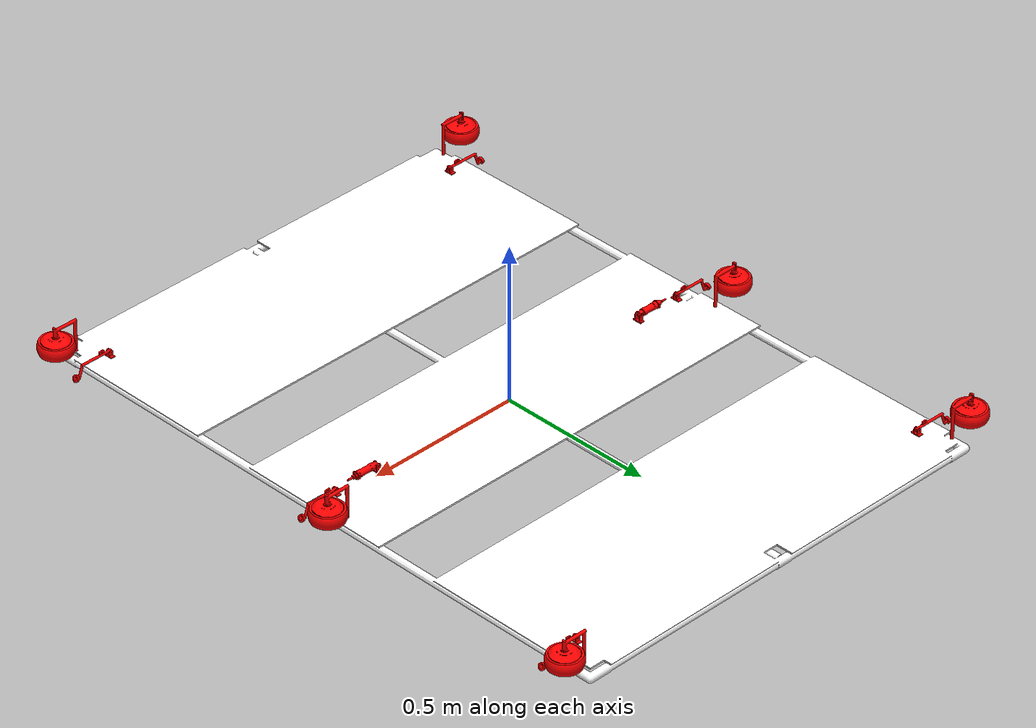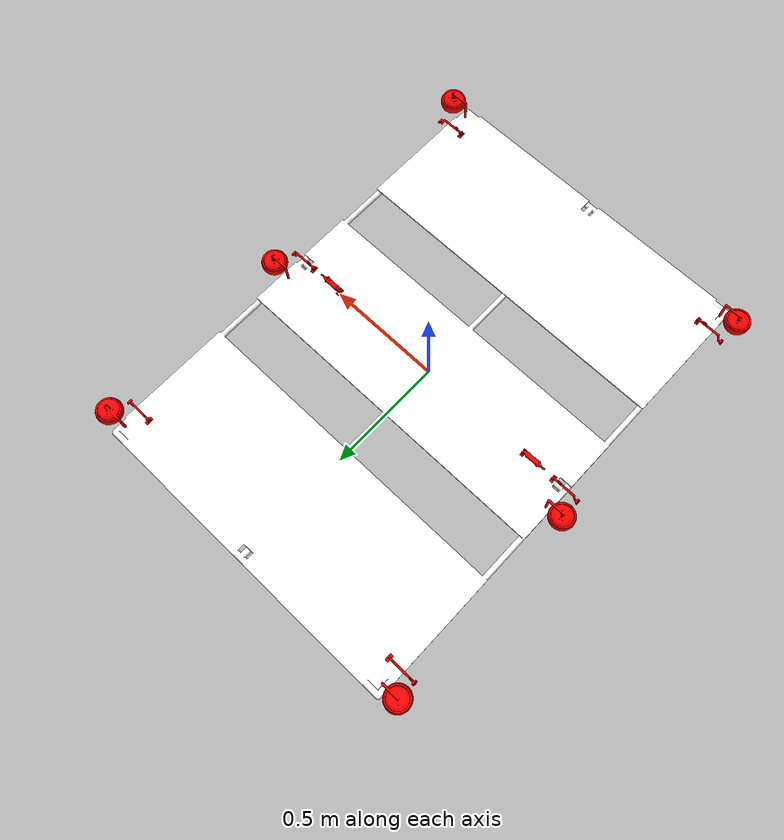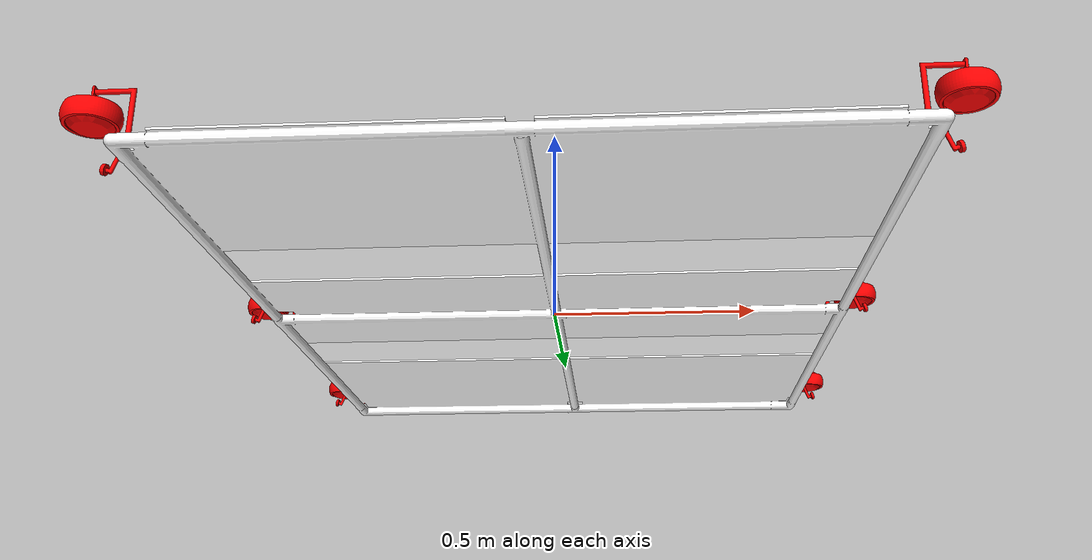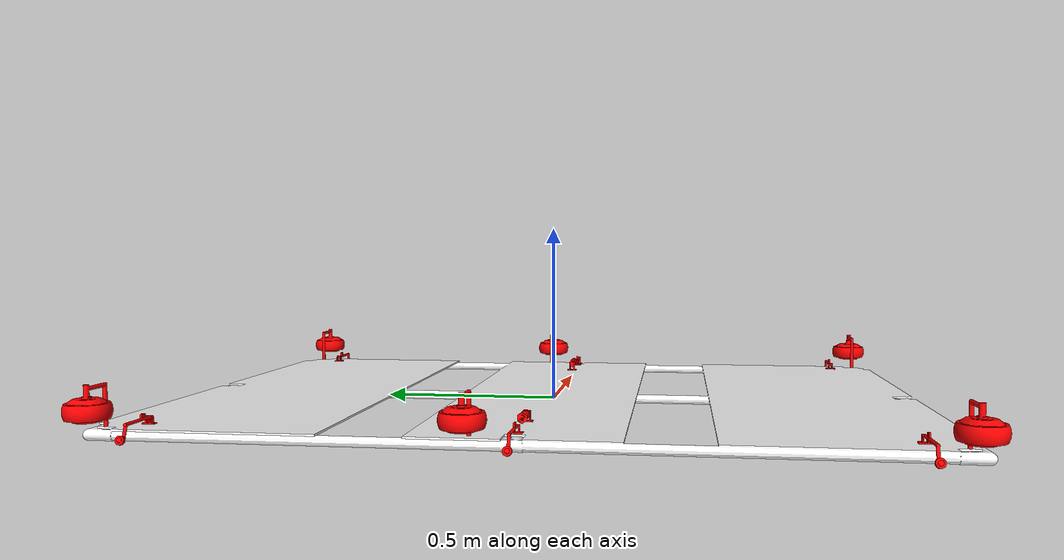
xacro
<?xml version="1.0"?>

<robot name="myrobot" xmlns:xacro="http://www.ros.org/wiki/xacro">

<!-- A RENOMMER EN base_link-->
<link name="link0_p4m">
  <inertial>
    <origin xyz="0.0 0.0 0.0" rpy="0.0 0.0 0.0"/>
    <mass value="0.0"/>
    <inertia ixx="0" ixy="0.0" ixz="0.0" iyy="0.0" iyz="0.0" izz="0.0"/>
  </inertial>
  <visual name="">
    <origin xyz="-0.727 -1.032 0.01935" rpy="-1.5708 0.0 0.0"/>
    <geometry>
      <mesh filename="package://plat4m_description/meshes/link0_at_p4m.STL" scale="0.001 0.001 0.001"/>
    </geometry>
    <material name="">
      <color rgba="1 1 1 1"/>
      <texture filename=""/>
    </material>
  </visual>
  <collision>
    <origin xyz="0.0 0.0 0.0" rpy="0.0 0.0 0.0"/>
    <geometry>
      <mesh filename="package://plat4m_description/meshes/link0_at_p4m.STL" scale="0.01 0.01 0.01"/>
    </geometry>
  </collision>
</link>

<joint name="joint_0_1_l2" type="fixed">
  <origin xyz="0.50 0.0 0.01935" rpy="0.0 0.0 0.0"/>
  <parent link="link0_p4m"/>
  <child link="link1_atache_l2"/>
</joint>

<link name="link1_atache_l2">
  <inertial>
    <origin xyz="0.0 0.0 0.0" rpy="0.0 0.0 0.0"/>
    <mass value="0.0"/>
    <inertia ixx="0.0" ixy="0.0" ixz="0.0" iyy="0.0" iyz="0.0" izz="0.0"/>
  </inertial>
  <visual name="">
    <origin xyz="0.0 0.0 0.0" rpy="0.0 0.0 0.0"/>
    <geometry>
      <mesh filename="package://plat4m_description/meshes/link1_atache.stl" scale="0.01 0.01 0.01"/>
    </geometry>
    <material name="">
      <color rgba="1.0 0.0 0.0 1.0"/>
      <texture filename=""/>
    </material>
  </visual>
  <collision>
    <origin xyz="0.0 0.0 0.0" rpy="0.0 0.0 0.0"/>
    <geometry>
      <mesh filename="package://plat4m_description/meshes/link1_atache.stl" scale="0.01 0.01 0.01"/>
    </geometry>
  </collision>
</link>

<joint name="joint_1_2_l2" type="continuous">
  <origin xyz="0.000 0.000 0.021" rpy="0.0 0.0 0.0"/>
  <parent link="link1_atache_l2"/>
  <child link="link2_act_l2"/>
  <axis xyz="0.0 1.0 0.0"/>
</joint>

<!-- A AJOUTER POUR LA SIMU - DEBUT-->
<gazebo>
    <plugin name="gazebo_ros_control" filename="libgazebo_ros_control.so">
    <robotNamespace>/</robotNamespace>
    <legacyModeNS>true</legacyModeNS>
    </plugin>
</gazebo>
<!-- A AJOUTER POUR LA SIMU - FIN-->

<!-- A AJOUTER POUR CHACUNE DE TES ROUES et de TES PISTONS
JE TE CONSEILLE DE REVOIR TON CODE
POUR PROFITER DES MACROS XACRO-->
<!-- DEBUT DE l'AJOUT -->
<transmission name="XXX_wheel_trans">
    <type>transmission_interface/SimpleTransmission</type>
    <actuator name="XXX_wheel_motor">
        <mechanicalReduction>1</mechanicalReduction>
    </actuator>
    <joint name="XXX_wheel_joint">
        <hardwareInterface>hardware_interface/VelocityJointInterface</hardwareInterface>
    </joint>
</transmission>

<gazebo reference="XXX_wheel">
    <mu1 value="2.0"/>
    <mu2 value="1.0"/>
    <kp value="10000000.0" />
    <kd value="1.0" />
    <material>Gazebo/Black</material>
</gazebo>
<!-- FIN DE l'AJOUT -->

<link name="link2_act_l2">
  <inertial>
    <origin xyz="0.0 0.0 0.0" rpy="0.0 0.0 0.0"/>
    <mass value="0.0"/>
    <inertia ixx="0.0" ixy="0.0" ixz="0.0" iyy="0.0" iyz="0.0" izz="0.0"/>
  </inertial>
  <visual name="">
    <origin xyz="0.0 0.0 0.0" rpy="0.0 0.0 0.0"/>
    <geometry>
      <mesh filename="package://plat4m_description/meshes/link2_act.stl" scale="0.01 0.01 0.01"/>
       </geometry>
    <material name="">
      <color rgba="1.0 0.0 0.0 1.0"/>
      <texture filename=""/>
    </material>
  </visual>
  <collision>
    <origin xyz="0.0 0.0 0.0" rpy="0.0 0.0 0.0"/>
    <geometry>
      <mesh filename="package://plat4m_description/meshes/link2_act.stl" scale="0.01 0.01 0.01"/>
    </geometry>
  </collision>
</link>

<joint name="joint_2_3_l2" type="prismatic">
  <origin xyz="0.03 0.0 0.0" rpy="0.0 0.0 0.0"/>
  <parent link="link2_act_l2"/>
  <child link="link3_tige_l2"/>
  <axis xyz="1.0 0.0 0.0"/>
  <limit lower="0.000" upper="0.070" effort="100.0" velocity="20.0"/>
</joint>

<link name="link3_tige_l2">
  <inertial>
    <origin xyz="0.0 0.0 0.0" rpy="0.0 0.0 0.0"/>
    <mass value="0.0"/>
    <inertia ixx="0.0" ixy="0.0" ixz="0.0" iyy="0.0" iyz="0.0" izz="0.0"/>
  </inertial>
  <visual name="">
    <origin xyz="0.0 0.0 0.0" rpy="0.0 0.0 0.0"/>
      <geometry>
      <mesh filename="package://plat4m_description/meshes/link3_tige.stl" scale="0.01 0.01 0.01"/>
    </geometry>
    <material name="">
      <color rgba="1.0 0.0 0.0 1.0"/>
      <texture filename=""/>
    </material>
  </visual>
  <collision>
    <origin xyz="0.0 0.0 0.0" rpy="0.0 0.0 0.0"/>
    <geometry>
      <mesh filename="package://plat4m_description/meshes/link3_tige.stl" scale="0.01 0.01 0.01"/>
    </geometry>
  </collision>
</link>

<link name="link4_bras_l2">
  <inertial>
    <origin xyz="0.0 0.0 0.0" rpy="0.0 0.0 0.0"/>
    <mass value="0.0"/>
    <inertia ixx="0.0" ixy="0.0" ixz="0.0" iyy="0.0" iyz="0.0" izz="0.0"/>
  </inertial>
  <visual name="">
    <origin xyz="0.0 0.0 0.0" rpy="0.0 0.0 0.0"/>
      <geometry>
      <mesh filename="package://plat4m_description/meshes/link4_bras.stl" scale="0.01 0.01 0.01"/>
    </geometry>
    <material name="">
      <color rgba="1.0 0.0 0.0 1.0"/>
      <texture filename=""/>
    </material>
  </visual>
  <collision>
    <origin xyz="0.0 0.0 0.0" rpy="0.0 0.0 0.0"/>
    <geometry>
      <mesh filename="package://plat4m_description/meshes/link4_bras.stl" scale="0.01 0.01 0.01"/>
    </geometry>
  </collision>
</link>

<joint name="joint_0_5_l2" type="fixed">
  <origin xyz="0.65 0.0 0.01935" rpy="0.0 0.0 0.0"/>
  <parent link="link0_p4m"/>
  <child link="link5_atpiv_l2"/>
</joint>

<joint name="joint_4_5_l2" type="revolute">
  <origin xyz="0.0 0.0 0.0161" rpy="0.0 0.0 0.0"/>
  <parent link="link5_atpiv_l2"/>
  <child link="link4_bras_l2"/>
  <axis xyz="0.0 -1.0 0.0"/>
  <limit lower="0.000" upper="1" effort="100.0" velocity="20.0"/>
</joint>

<link name="link5_atpiv_l2">
  <inertial>
    <origin xyz="0.0 0.0 0.0" rpy="0.0 0.0 0.0"/>
    <mass value="0.0"/>
    <inertia ixx="0.0" ixy="0.0" ixz="0.0" iyy="0.0" iyz="0.0" izz="0.0"/>
  </inertial>
  <visual name="">
    <origin xyz="0.0 0.0 0.0" rpy="0.0 0.0 0.0"/>
      <geometry>
      <mesh filename="package://plat4m_description/meshes/link5_atpiv.stl" scale="0.01 0.01 0.01"/>
    </geometry>
    <material name="">
      <color rgba="1.0 0.0 0.0 1.0"/>
      <texture filename=""/>
    </material>
  </visual>
  <collision>
    <origin xyz="0.0 0.0 0.0" rpy="0.0 0.0 0.0"/>
    <geometry>
      <mesh filename="package://plat4m_description/meshes/link5_atpiv.stl" scale="0.01 0.01 0.01"/>
    </geometry>
  </collision>
</link>

<joint name="joint_5_6_l2" type="continuous">
  <origin xyz="0.120 0.000 -0.033" rpy="0.0 -0.27 0.0"/>
  <parent link="link4_bras_l2"/>
  <child link="link6_roubi_l2"/>
  <axis xyz="1.0 0.0 0.0"/>
</joint>

<link name="link6_roubi_l2">
  <inertial>
    <origin xyz="0.0 0.0 0.0" rpy="0.0 0.0 0.0"/>
    <mass value="0.0"/>
    <inertia ixx="0.0" ixy="0.0" ixz="0.0" iyy="0.0" iyz="0.0" izz="0.0"/>
  </inertial>
  <visual name="">
    <origin xyz="0.0 0.0 0.0" rpy="0.0 0.0 0.0"/>
      <geometry>
      <mesh filename="package://plat4m_description/meshes/link6_roubi.stl" scale="0.01 0.01 0.01"/>
    </geometry>
    <material name="">
      <color rgba="1.0 0.0 0.0 1.0"/>
      <texture filename=""/>
    </material>
  </visual>
  <collision>
    <origin xyz="0.0 0.0 0.0" rpy="0.0 0.0 0.0"/>
    <geometry>
      <mesh filename="package://plat4m_description/meshes/link6_roubi.stl" scale="0.01 0.01 0.01"/>
    </geometry>
  </collision>
</link>

<joint name="joint_0_7_l2" type="prismatic">
  <origin xyz="0.7 0.1 0.01935" rpy="0.0 0.0 0.0"/>
  <parent link="link0_p4m"/>
  <child link="link7_brasimp_l2"/>
  <axis xyz="-1.0 0.0 0.0"/>
  <limit lower="0.0" upper="0.1" effort="20.0" velocity="20.0"/>
</joint>

<link name="link7_brasimp_l2">
  <inertial>
    <origin xyz="0.0 0.0 0.0" rpy="0.0 0.0 0.0"/>
    <mass value="0.0"/>
    <inertia ixx="0.0" ixy="0.0" ixz="0.0" iyy="0.0" iyz="0.0" izz="0.0"/>
  </inertial>
  <visual name="">
    <origin xyz="0.0 0.0 0.0" rpy="0.0 0.0 0.0"/>
      <geometry>
      <mesh filename="package://plat4m_description/meshes/link7_brasimp.stl" scale="0.01 0.01 0.01"/>
    </geometry>
    <material name="">
      <color rgba="1.0 0.0 0.0 1.0"/>
      <texture filename=""/>
    </material>
  </visual>
  <collision>
    <origin xyz="0.0 0.0 0.0" rpy="0.0 0.0 0.0"/>
    <geometry>
      <mesh filename="package://plat4m_description/meshes/link7_brasimp.stl" scale="0.01 0.01 0.01"/>
    </geometry>
  </collision>
</link>

<joint name="joint_7_8_l2" type="continuous">
  <origin xyz="0.0708 0.0 0.05" rpy="0.0 0.0 0.0"/>
  <parent link="link7_brasimp_l2"/>
  <child link="link8_band_l2"/>
  <axis xyz="0.0 0.0 1.0"/>
</joint>

<link name="link8_band_l2">
  <inertial>
    <origin xyz="0.0 0.0 0.0" rpy="0.0 0.0 0.0"/>
    <mass value="0.0"/>
    <inertia ixx="0.0" ixy="0.0" ixz="0.0" iyy="0.0" iyz="0.0" izz="0.0"/>
  </inertial>
  <visual name="">
    <origin xyz="0.0 0.0 0.0" rpy="0.0 0.0 0.0"/>
      <geometry>
      <mesh filename="package://plat4m_description/meshes/link8_band.stl" scale="0.01 0.01 0.01"/>
    </geometry>
    <material name="">
      <color rgba="1.0 0.0 0.0 1.0"/>
      <texture filename=""/>
    </material>
  </visual>
  <collision>
    <origin xyz="0.0 0.0 0.0" rpy="0.0 0.0 0.0"/>
    <geometry>
      <mesh filename="package://plat4m_description/meshes/link8_band.stl" scale="0.01 0.01 0.01"/>
    </geometry>
  </collision>
</link>
<link name="link4_bras_l1">
  <inertial>
    <origin xyz="0.0 0.0 0.0" rpy="0.0 0.0 0.0"/>
    <mass value="0.0"/>
    <inertia ixx="0.0" ixy="0.0" ixz="0.0" iyy="0.0" iyz="0.0" izz="0.0"/>
  </inertial>
  <visual name="">
    <origin xyz="0.0 0.0 0.0" rpy="0.0 0.0 0.0"/>
      <geometry>
      <mesh filename="package://plat4m_description/meshes/link4_bras.stl" scale="0.01 0.01 0.01"/>
    </geometry>
    <material name="">
      <color rgba="1.0 0.0 0.0 1.0"/>
      <texture filename=""/>
    </material>
  </visual>
  <collision>
    <origin xyz="0.0 0.0 0.0" rpy="0.0 0.0 0.0"/>
    <geometry>
      <mesh filename="package://plat4m_description/meshes/link4_bras.stl" scale="0.01 0.01 0.01"/>
    </geometry>
  </collision>
</link>

<joint name="joint_0_5_l1" type="fixed">
  <origin xyz="0.65 0.9 0.01935" rpy="0.0 0.0 0.0"/>
  <parent link="link0_p4m"/>
  <child link="link5_atpiv_l1"/>
</joint>

<joint name="joint_4_5_l1" type="revolute">
  <origin xyz="0.0 0 0.0161" rpy="0.0 0.0 0.0"/>
  <parent link="link5_atpiv_l1"/>
  <child link="link4_bras_l1"/>
  <axis xyz="0.0 -1.0 0.0"/>
  <limit lower="0.000" upper="1" effort="100.0" velocity="20.0"/>
</joint>

<link name="link5_atpiv_l1">
  <inertial>
    <origin xyz="0.0 0.0 0.0" rpy="0.0 0.0 0.0"/>
    <mass value="0.0"/>
    <inertia ixx="0.0" ixy="0.0" ixz="0.0" iyy="0.0" iyz="0.0" izz="0.0"/>
  </inertial>
  <visual name="">
    <origin xyz="0.0 0.0 0.0" rpy="0.0 0.0 0.0"/>
      <geometry>
      <mesh filename="package://plat4m_description/meshes/link5_atpiv.stl" scale="0.01 0.01 0.01"/>
    </geometry>
    <material name="">
      <color rgba="1.0 0.0 0.0 1.0"/>
      <texture filename=""/>
    </material>
  </visual>
  <collision>
    <origin xyz="0.0 0.0 0.0" rpy="0.0 0.0 0.0"/>
    <geometry>
      <mesh filename="package://plat4m_description/meshes/link5_atpiv.stl" scale="0.01 0.01 0.01"/>
    </geometry>
  </collision>
</link>

<joint name="joint_5_6_l1" type="continuous">
  <origin xyz="0.120 0 -0.033" rpy="0.0 -0.27 0.0"/>
  <parent link="link4_bras_l1"/>
  <child link="link6_roubi_l1"/>
  <axis xyz="1.0 0.0 0.0"/>
</joint>

<link name="link6_roubi_l1">
  <inertial>
    <origin xyz="0.0 0.0 0.0" rpy="0.0 0.0 0.0"/>
    <mass value="0.0"/>
    <inertia ixx="0.0" ixy="0.0" ixz="0.0" iyy="0.0" iyz="0.0" izz="0.0"/>
  </inertial>
  <visual name="">
    <origin xyz="0.0 0.0 0.0" rpy="0.0 0.0 0.0"/>
      <geometry>
      <mesh filename="package://plat4m_description/meshes/link6_roubi.stl" scale="0.01 0.01 0.01"/>
    </geometry>
    <material name="">
      <color rgba="1.0 0.0 0.0 1.0"/>
      <texture filename=""/>
    </material>
  </visual>
  <collision>
    <origin xyz="0.0 0.0 0.0" rpy="0.0 0.0 0.0"/>
    <geometry>
      <mesh filename="package://plat4m_description/meshes/link6_roubi.stl" scale="0.01 0.01 0.01"/>
    </geometry>
  </collision>
</link>

<joint name="joint_0_7_l1" type="prismatic">
  <origin xyz="0.7 0.98 0.01935" rpy="0.0 0.0 0.0"/>
  <parent link="link0_p4m"/>
  <child link="link7_brasimp_l1"/>
  <axis xyz="-1.0 0.0 0.0"/>
  <limit lower="0.0" upper="0.1" effort="20.0" velocity="20.0"/>
</joint>

<link name="link7_brasimp_l1">
  <inertial>
    <origin xyz="0.0 0.0 0.0" rpy="0.0 0.0 0.0"/>
    <mass value="0.0"/>
    <inertia ixx="0.0" ixy="0.0" ixz="0.0" iyy="0.0" iyz="0.0" izz="0.0"/>
  </inertial>
  <visual name="">
    <origin xyz="0.0 0.0 0.0" rpy="0.0 0.0 0.0"/>
      <geometry>
      <mesh filename="package://plat4m_description/meshes/link7_brasimp.stl" scale="0.01 0.01 0.01"/>
    </geometry>
    <material name="">
      <color rgba="1.0 0.0 0.0 1.0"/>
      <texture filename=""/>
    </material>
  </visual>
  <collision>
    <origin xyz="0.0 0.0 0.0" rpy="0.0 0.0 0.0"/>
    <geometry>
      <mesh filename="package://plat4m_description/meshes/link7_brasimp.stl" scale="0.01 0.01 0.01"/>
    </geometry>
  </collision>
</link>

<joint name="joint_7_8_l1" type="continuous">
  <origin xyz="0.0708 0 0.05" rpy="0.0 0.0 0.0"/>
  <parent link="link7_brasimp_l1"/>
  <child link="link8_band_l1"/>
  <axis xyz="0.0 0.0 1.0"/>
</joint>
<link name="link8_band_l1">
  <inertial>
    <origin xyz="0.0 0.0 0.0" rpy="0.0 0.0 0.0"/>
    <mass value="0.0"/>
    <inertia ixx="0.0" ixy="0.0" ixz="0.0" iyy="0.0" iyz="0.0" izz="0.0"/>
  </inertial>
  <visual name="">
    <origin xyz="0.0 0.0 0.0" rpy="0.0 0.0 0.0"/>
      <geometry>
      <mesh filename="package://plat4m_description/meshes/link8_band.stl" scale="0.01 0.01 0.01"/>
    </geometry>
    <material name="">
      <color rgba="1.0 0.0 0.0 1.0"/>
      <texture filename=""/>
    </material>
  </visual>
  <collision>
    <origin xyz="0.0 0.0 0.0" rpy="0.0 0.0 0.0"/>
    <geometry>
      <mesh filename="package://plat4m_description/meshes/link8_band.stl" scale="0.01 0.01 0.01"/>
    </geometry>
  </collision>
</link>

<link name="link4_bras_l3">
  <inertial>
    <origin xyz="0.0 0.0 0.0" rpy="0.0 0.0 0.0"/>
    <mass value="0.0"/>
    <inertia ixx="0.0" ixy="0.0" ixz="0.0" iyy="0.0" iyz="0.0" izz="0.0"/>
  </inertial>
  <visual name="">
    <origin xyz="0.0 0.0 0.0" rpy="0.0 0.0 0.0"/>
      <geometry>
      <mesh filename="package://plat4m_description/meshes/link4_bras.stl" scale="0.01 0.01 0.01"/>
    </geometry>
    <material name="">
      <color rgba="1.0 0.0 0.0 1.0"/>
      <texture filename=""/>
    </material>
  </visual>
  <collision>
    <origin xyz="0.0 0.0 0.0" rpy="0.0 0.0 0.0"/>
    <geometry>
      <mesh filename="package://plat4m_description/meshes/link4_bras.stl" scale="0.01 0.01 0.01"/>
    </geometry>
  </collision>
</link>

<joint name="joint_0_5_l3" type="fixed">
  <origin xyz="0.65 -0.9 0.01935" rpy="0.0 0.0 0.0"/>
  <parent link="link0_p4m"/>
  <child link="link5_atpiv_l3"/>
</joint>

<joint name="joint_4_5_l3" type="revolute">
  <origin xyz="0.0 0 0.0161" rpy="0.0 0.0 0.0"/>
  <parent link="link5_atpiv_l3"/>
  <child link="link4_bras_l3"/>
  <axis xyz="0.0 -1.0 0.0"/>
  <limit lower="0.000" upper="1" effort="100.0" velocity="20.0"/>
</joint>

<link name="link5_atpiv_l3">
  <inertial>
    <origin xyz="0.0 0.0 0.0" rpy="0.0 0.0 0.0"/>
    <mass value="0.0"/>
    <inertia ixx="0.0" ixy="0.0" ixz="0.0" iyy="0.0" iyz="0.0" izz="0.0"/>
  </inertial>
  <visual name="">
    <origin xyz="0.0 0.0 0.0" rpy="0.0 0.0 0.0"/>
      <geometry>
      <mesh filename="package://plat4m_description/meshes/link5_atpiv.stl" scale="0.01 0.01 0.01"/>
    </geometry>
    <material name="">
      <color rgba="1.0 0.0 0.0 1.0"/>
      <texture filename=""/>
    </material>
  </visual>
  <collision>
    <origin xyz="0.0 0.0 0.0" rpy="0.0 0.0 0.0"/>
    <geometry>
      <mesh filename="package://plat4m_description/meshes/link5_atpiv.stl" scale="0.01 0.01 0.01"/>
    </geometry>
  </collision>
</link>

<joint name="joint_5_6_l3" type="continuous">
  <origin xyz="0.120 0 -0.033" rpy="0.0 -0.27 0.0"/>
  <parent link="link4_bras_l3"/>
  <child link="link6_roubi_l3"/>
  <axis xyz="1.0 0.0 0.0"/>
</joint>

<link name="link6_roubi_l3">
  <inertial>
    <origin xyz="0.0 0.0 0.0" rpy="0.0 0.0 0.0"/>
    <mass value="0.0"/>
    <inertia ixx="0.0" ixy="0.0" ixz="0.0" iyy="0.0" iyz="0.0" izz="0.0"/>
  </inertial>
  <visual name="">
    <origin xyz="0.0 0.0 0.0" rpy="0.0 0.0 0.0"/>
      <geometry>
      <mesh filename="package://plat4m_description/meshes/link6_roubi.stl" scale="0.01 0.01 0.01"/>
    </geometry>
    <material name="">
      <color rgba="1.0 0.0 0.0 1.0"/>
      <texture filename=""/>
    </material>
  </visual>
  <collision>
    <origin xyz="0.0 0.0 0.0" rpy="0.0 0.0 0.0"/>
    <geometry>
      <mesh filename="package://plat4m_description/meshes/link6_roubi.stl" scale="0.01 0.01 0.01"/>
    </geometry>
  </collision>
</link>

<joint name="joint_0_7_l3" type="prismatic">
  <origin xyz="0.7 -0.98 0.01935" rpy="0.0 0.0 0.0"/>
  <parent link="link0_p4m"/>
  <child link="link7_brasimp_l3"/>
  <axis xyz="-1.0 0.0 0.0"/>
  <limit lower="0.0" upper="0.1" effort="20.0" velocity="20.0"/>
</joint>

<link name="link7_brasimp_l3">
  <inertial>
    <origin xyz="0.0 0.0 0.0" rpy="0.0 0.0 0.0"/>
    <mass value="0.0"/>
    <inertia ixx="0.0" ixy="0.0" ixz="0.0" iyy="0.0" iyz="0.0" izz="0.0"/>
  </inertial>
  <visual name="">
    <origin xyz="0.0 0.0 0.0" rpy="0.0 0.0 0.0"/>
      <geometry>
      <mesh filename="package://plat4m_description/meshes/link7_brasimp.stl" scale="0.01 0.01 0.01"/>
    </geometry>
    <material name="">
      <color rgba="1.0 0.0 0.0 1.0"/>
      <texture filename=""/>
    </material>
  </visual>
  <collision>
    <origin xyz="0.0 0.0 0.0" rpy="0.0 0.0 0.0"/>
    <geometry>
      <mesh filename="package://plat4m_description/meshes/link7_brasimp.stl" scale="0.01 0.01 0.01"/>
    </geometry>
  </collision>
</link>

<joint name="joint_7_8_l3" type="continuous">
  <origin xyz="0.0708 0 0.05" rpy="0.0 0.0 0.0"/>
  <parent link="link7_brasimp_l3"/>
  <child link="link8_band_l3"/>
  <axis xyz="0.0 0.0 1.0"/>
</joint>
<link name="link8_band_l3">
  <inertial>
    <origin xyz="0.0 0.0 0.0" rpy="0.0 0.0 0.0"/>
    <mass value="0.0"/>
    <inertia ixx="0.0" ixy="0.0" ixz="0.0" iyy="0.0" iyz="0.0" izz="0.0"/>
  </inertial>
  <visual name="">
    <origin xyz="0.0 0.0 0.0" rpy="0.0 0.0 0.0"/>
      <geometry>
      <mesh filename="package://plat4m_description/meshes/link8_band.stl" scale="0.01 0.01 0.01"/>
    </geometry>
    <material name="">
      <color rgba="1.0 0.0 0.0 1.0"/>
      <texture filename=""/>
    </material>
  </visual>
  <collision>
    <origin xyz="0.0 0.0 0.0" rpy="0.0 0.0 0.0"/>
    <geometry>
      <mesh filename="package://plat4m_description/meshes/link8_band.stl" scale="0.01 0.01 0.01"/>
    </geometry>
  </collision>
</link>

<joint name="joint_0_1_r2" type="fixed">
  <origin xyz="-0.50 0.0 0.01935" rpy="0.0 0.0 3.1416"/>
  <parent link="link0_p4m"/>
  <child link="link1_atache_r2"/>
</joint>

<link name="link1_atache_r2">
  <inertial>
    <origin xyz="0.0 0.0 0.0" rpy="0.0 0.0 0.0"/>
    <mass value="0.0"/>
    <inertia ixx="0.0" ixy="0.0" ixz="0.0" iyy="0.0" iyz="0.0" izz="0.0"/>
  </inertial>
  <visual name="">
    <origin xyz="0.0 0.0 0.0" rpy="0.0 0.0 0.0"/>
    <geometry>
      <mesh filename="package://plat4m_description/meshes/link1_atache.stl" scale="0.01 0.01 0.01"/>
    </geometry>
    <material name="">
      <color rgba="1.0 0.0 0.0 1.0"/>
      <texture filename=""/>
    </material>
  </visual>
  <collision>
    <origin xyz="0.0 0.0 0.0" rpy="0.0 0.0 0.0"/>
    <geometry>
      <mesh filename="package://plat4m_description/meshes/link1_atache.stl" scale="0.01 0.01 0.01"/>
    </geometry>
  </collision>
</link>

<joint name="joint_1_2_r2" type="continuous">
  <origin xyz="0.000 0.000 0.021" rpy="0.0 0.0 0.0"/>
  <parent link="link1_atache_r2"/>
  <child link="link2_act_r2"/>
  <axis xyz="0.0 1.0 0.0"/>
</joint>

<link name="link2_act_r2">
  <inertial>
    <origin xyz="0.0 0.0 0.0" rpy="0.0 0.0 0.0"/>
    <mass value="0.0"/>
    <inertia ixx="0.0" ixy="0.0" ixz="0.0" iyy="0.0" iyz="0.0" izz="0.0"/>
  </inertial>
  <visual name="">
    <origin xyz="0.0 0.0 0.0" rpy="0.0 0.0 0.0"/>
    <geometry>
      <mesh filename="package://plat4m_description/meshes/link2_act.stl" scale="0.01 0.01 0.01"/>
       </geometry>
    <material name="">
      <color rgba="1.0 0.0 0.0 1.0"/>
      <texture filename=""/>
    </material>
  </visual>
  <collision>
    <origin xyz="0.0 0.0 0.0" rpy="0.0 0.0 0.0"/>
    <geometry>
      <mesh filename="package://plat4m_description/meshes/link2_act.stl" scale="0.01 0.01 0.01"/>
    </geometry>
  </collision>
</link>

<joint name="joint_2_3_r2" type="prismatic">
  <origin xyz="0.03 0.0 0.0" rpy="0.0 0.0 0.0"/>
  <parent link="link2_act_r2"/>
  <child link="link3_tige_r2"/>
  <axis xyz="1.0 0.0 0.0"/>
  <limit lower="0.000" upper="0.070" effort="100.0" velocity="20.0"/>
</joint>

<link name="link3_tige_r2">
  <inertial>
    <origin xyz="0.0 0.0 0.0" rpy="0.0 0.0 0.0"/>
    <mass value="0.0"/>
    <inertia ixx="0.0" ixy="0.0" ixz="0.0" iyy="0.0" iyz="0.0" izz="0.0"/>
  </inertial>
  <visual name="">
    <origin xyz="0.0 0.0 0.0" rpy="0.0 0.0 0.0"/>
      <geometry>
      <mesh filename="package://plat4m_description/meshes/link3_tige.stl" scale="0.01 0.01 0.01"/>
    </geometry>
    <material name="">
      <color rgba="1.0 0.0 0.0 1.0"/>
      <texture filename=""/>
    </material>
  </visual>
  <collision>
    <origin xyz="0.0 0.0 0.0" rpy="0.0 0.0 0.0"/>
    <geometry>
      <mesh filename="package://plat4m_description/meshes/link3_tige.stl" scale="0.01 0.01 0.01"/>
    </geometry>
  </collision>
</link>

<link name="link4_bras_r2">
  <inertial>
    <origin xyz="0.0 0.0 0.0" rpy="0.0 0.0 0.0"/>
    <mass value="0.0"/>
    <inertia ixx="0.0" ixy="0.0" ixz="0.0" iyy="0.0" iyz="0.0" izz="0.0"/>
  </inertial>
  <visual name="">
    <origin xyz="0.0 0.0 0.0" rpy="0.0 0.0 0.0"/>
      <geometry>
      <mesh filename="package://plat4m_description/meshes/link4_bras.stl" scale="0.01 0.01 0.01"/>
    </geometry>
    <material name="">
      <color rgba="1.0 0.0 0.0 1.0"/>
      <texture filename=""/>
    </material>
  </visual>
  <collision>
    <origin xyz="0.0 0.0 0.0" rpy="0.0 0.0 0.0"/>
    <geometry>
      <mesh filename="package://plat4m_description/meshes/link4_bras.stl" scale="0.01 0.01 0.01"/>
    </geometry>
  </collision>
</link>

<joint name="joint_0_5_r2" type="fixed">
  <origin xyz="-0.65 0.0 0.01935" rpy="0.0 0.0 3.1416"/>
  <parent link="link0_p4m"/>
  <child link="link5_atpiv_r2"/>
</joint>

<joint name="joint_4_5_r2" type="revolute">
  <origin xyz="0.0 0.0 0.0161" rpy="0.0 0.0 0.0"/>
  <parent link="link5_atpiv_r2"/>
  <child link="link4_bras_r2"/>
  <axis xyz="0.0 -1.0 0.0"/>
  <limit lower="0.000" upper="1" effort="100.0" velocity="20.0"/>
</joint>

<link name="link5_atpiv_r2">
  <inertial>
    <origin xyz="0.0 0.0 0.0" rpy="0.0 0.0 0.0"/>
    <mass value="0.0"/>
    <inertia ixx="0.0" ixy="0.0" ixz="0.0" iyy="0.0" iyz="0.0" izz="0.0"/>
  </inertial>
  <visual name="">
    <origin xyz="0.0 0.0 0.0" rpy="0.0 0.0 0.0"/>
      <geometry>
      <mesh filename="package://plat4m_description/meshes/link5_atpiv.stl" scale="0.01 0.01 0.01"/>
    </geometry>
    <material name="">
      <color rgba="1.0 0.0 0.0 1.0"/>
      <texture filename=""/>
    </material>
  </visual>
  <collision>
    <origin xyz="0.0 0.0 0.0" rpy="0.0 0.0 0.0"/>
    <geometry>
      <mesh filename="package://plat4m_description/meshes/link5_atpiv.stl" scale="0.01 0.01 0.01"/>
    </geometry>
  </collision>
</link>

<joint name="joint_5_6_r2" type="continuous">
  <origin xyz="0.120 0.000 -0.033" rpy="0.0 -0.27 0.0"/>
  <parent link="link4_bras_r2"/>
  <child link="link6_roubi_r2"/>
  <axis xyz="-1.0 0.0 0.0"/>
</joint>

<link name="link6_roubi_r2">
  <inertial>
    <origin xyz="0.0 0.0 0.0" rpy="0.0 0.0 0.0"/>
    <mass value="0.0"/>
    <inertia ixx="0.0" ixy="0.0" ixz="0.0" iyy="0.0" iyz="0.0" izz="0.0"/>
  </inertial>
  <visual name="">
    <origin xyz="0.0 0.0 0.0" rpy="0.0 0.0 0.0"/>
      <geometry>
      <mesh filename="package://plat4m_description/meshes/link6_roubi.stl" scale="0.01 0.01 0.01"/>
    </geometry>
    <material name="">
      <color rgba="1.0 0.0 0.0 1.0"/>
      <texture filename=""/>
    </material>
  </visual>
  <collision>
    <origin xyz="0.0 0.0 0.0" rpy="0.0 0.0 0.0"/>
    <geometry>
      <mesh filename="package://plat4m_description/meshes/link6_roubi.stl" scale="0.01 0.01 0.01"/>
    </geometry>
  </collision>
</link>

<joint name="joint_0_7_r2" type="prismatic">
  <origin xyz="-0.7 0.1 0.01935" rpy="0.0 0.0 3.1416"/>
  <parent link="link0_p4m"/>
  <child link="link7_brasimp_r2"/>
  <axis xyz="-1.0 0.0 0.0"/>
  <limit lower="0.0" upper="0.1" effort="20.0" velocity="20.0"/>
</joint>

<link name="link7_brasimp_r2">
  <inertial>
    <origin xyz="0.0 0.0 0.0" rpy="0.0 0.0 0.0"/>
    <mass value="0.0"/>
    <inertia ixx="0.0" ixy="0.0" ixz="0.0" iyy="0.0" iyz="0.0" izz="0.0"/>
  </inertial>
  <visual name="">
    <origin xyz="0.0 0.0 0.0" rpy="0.0 0.0 0.0"/>
      <geometry>
      <mesh filename="package://plat4m_description/meshes/link7_brasimp.stl" scale="0.01 0.01 0.01"/>
    </geometry>
    <material name="">
      <color rgba="1.0 0.0 0.0 1.0"/>
      <texture filename=""/>
    </material>
  </visual>
  <collision>
    <origin xyz="0.0 0.0 0.0" rpy="0.0 0.0 0.0"/>
    <geometry>
      <mesh filename="package://plat4m_description/meshes/link7_brasimp.stl" scale="0.01 0.01 0.01"/>
    </geometry>
  </collision>
</link>

<joint name="joint_7_8_r2" type="continuous">
  <origin xyz="0.0708 0.0 0.05" rpy="0.0 0.0 0.0"/>
  <parent link="link7_brasimp_r2"/>
  <child link="link8_band_r2"/>
  <axis xyz="0.0 0.0 1.0"/>
</joint>

<link name="link8_band_r2">
  <inertial>
    <origin xyz="0.0 0.0 0.0" rpy="0.0 0.0 0.0"/>
    <mass value="0.0"/>
    <inertia ixx="0.0" ixy="0.0" ixz="0.0" iyy="0.0" iyz="0.0" izz="0.0"/>
  </inertial>
  <visual name="">
    <origin xyz="0.0 0.0 0.0" rpy="0.0 0.0 0.0"/>
      <geometry>
      <mesh filename="package://plat4m_description/meshes/link8_band.stl" scale="0.01 0.01 0.01"/>
    </geometry>
    <material name="">
      <color rgba="1.0 0.0 0.0 1.0"/>
      <texture filename=""/>
    </material>
  </visual>
  <collision>
    <origin xyz="0.0 0.0 0.0" rpy="0.0 0.0 0.0"/>
    <geometry>
      <mesh filename="package://plat4m_description/meshes/link8_band.stl" scale="0.01 0.01 0.01"/>
    </geometry>
  </collision>
</link>

<link name="link4_bras_r1">
  <inertial>
    <origin xyz="0.0 0.0 0.0" rpy="0.0 0.0 0.0"/>
    <mass value="0.0"/>
    <inertia ixx="0.0" ixy="0.0" ixz="0.0" iyy="0.0" iyz="0.0" izz="0.0"/>
  </inertial>
  <visual name="">
    <origin xyz="0.0 0.0 0.0" rpy="0.0 0.0 0.0"/>
      <geometry>
      <mesh filename="package://plat4m_description/meshes/link4_bras.stl" scale="0.01 0.01 0.01"/>
    </geometry>
    <material name="">
      <color rgba="1.0 0.0 0.0 1.0"/>
      <texture filename=""/>
    </material>
  </visual>
  <collision>
    <origin xyz="0.0 0.0 0.0" rpy="0.0 0.0 0.0"/>
    <geometry>
      <mesh filename="package://plat4m_description/meshes/link4_bras.stl" scale="0.01 0.01 0.01"/>
    </geometry>
  </collision>
</link>

<joint name="joint_0_5_r1" type="fixed">
  <origin xyz="-0.65 0.9 0.01935" rpy="0.0 0.0 3.1416"/>
  <parent link="link0_p4m"/>
  <child link="link5_atpiv_r1"/>
</joint>

<joint name="joint_4_5_r1" type="revolute">
  <origin xyz="0.0 0 0.0161" rpy="0.0 0.0 0.0"/>
  <parent link="link5_atpiv_r1"/>
  <child link="link4_bras_r1"/>
  <axis xyz="0.0 -1.0 0.0"/>
  <limit lower="0.000" upper="1" effort="100.0" velocity="20.0"/>
</joint>

<link name="link5_atpiv_r1">
  <inertial>
    <origin xyz="0.0 0.0 0.0" rpy="0.0 0.0 0.0"/>
    <mass value="0.0"/>
    <inertia ixx="0.0" ixy="0.0" ixz="0.0" iyy="0.0" iyz="0.0" izz="0.0"/>
  </inertial>
  <visual name="">
    <origin xyz="0.0 0.0 0.0" rpy="0.0 0.0 0.0"/>
      <geometry>
      <mesh filename="package://plat4m_description/meshes/link5_atpiv.stl" scale="0.01 0.01 0.01"/>
    </geometry>
    <material name="">
      <color rgba="1.0 0.0 0.0 1.0"/>
      <texture filename=""/>
    </material>
  </visual>
  <collision>
    <origin xyz="0.0 0.0 0.0" rpy="0.0 0.0 0.0"/>
    <geometry>
      <mesh filename="package://plat4m_description/meshes/link5_atpiv.stl" scale="0.01 0.01 0.01"/>
    </geometry>
  </collision>
</link>

<joint name="joint_5_6_r1" type="continuous">
  <origin xyz="0.120 0 -0.033" rpy="0.0 -0.27 0.0"/>
  <parent link="link4_bras_r1"/>
  <child link="link6_roubi_r1"/>
  <axis xyz="1.0 0.0 0.0"/>
</joint>

<link name="link6_roubi_r1">
  <inertial>
    <origin xyz="0.0 0.0 0.0" rpy="0.0 0.0 0.0"/>
    <mass value="0.0"/>
    <inertia ixx="0.0" ixy="0.0" ixz="0.0" iyy="0.0" iyz="0.0" izz="0.0"/>
  </inertial>
  <visual name="">
    <origin xyz="0.0 0.0 0.0" rpy="0.0 0.0 0.0"/>
      <geometry>
      <mesh filename="package://plat4m_description/meshes/link6_roubi.stl" scale="0.01 0.01 0.01"/>
    </geometry>
    <material name="">
      <color rgba="1.0 0.0 0.0 1.0"/>
      <texture filename=""/>
    </material>
  </visual>
  <collision>
    <origin xyz="0.0 0.0 0.0" rpy="0.0 0.0 0.0"/>
    <geometry>
      <mesh filename="package://plat4m_description/meshes/link6_roubi.stl" scale="0.01 0.01 0.01"/>
    </geometry>
  </collision>
</link>

<joint name="joint_0_7_r1" type="prismatic">
  <origin xyz="-0.7 0.98 0.01935" rpy="0.0 0.0 3.1416"/>
  <parent link="link0_p4m"/>
  <child link="link7_brasimp_r1"/>
  <axis xyz="-1.0 0.0 0.0"/>
  <limit lower="0.0" upper="0.1" effort="20.0" velocity="20.0"/>
</joint>

<link name="link7_brasimp_r1">
  <inertial>
    <origin xyz="0.0 0.0 0.0" rpy="0.0 0.0 0.0"/>
    <mass value="0.0"/>
    <inertia ixx="0.0" ixy="0.0" ixz="0.0" iyy="0.0" iyz="0.0" izz="0.0"/>
  </inertial>
  <visual name="">
    <origin xyz="0.0 0.0 0.0" rpy="0.0 0.0 0.0"/>
      <geometry>
      <mesh filename="package://plat4m_description/meshes/link7_brasimp.stl" scale="0.01 0.01 0.01"/>
    </geometry>
    <material name="">
      <color rgba="1.0 0.0 0.0 1.0"/>
      <texture filename=""/>
    </material>
  </visual>
  <collision>
    <origin xyz="0.0 0.0 0.0" rpy="0.0 0.0 0.0"/>
    <geometry>
      <mesh filename="package://plat4m_description/meshes/link7_brasimp.stl" scale="0.01 0.01 0.01"/>
    </geometry>
  </collision>
</link>

<joint name="joint_7_8_r1" type="continuous">
  <origin xyz="0.0708 0 0.05" rpy="0.0 0.0 0.0"/>
  <parent link="link7_brasimp_r1"/>
  <child link="link8_band_r1"/>
  <axis xyz="0.0 0.0 1.0"/>
</joint>
<link name="link8_band_r1">
  <inertial>
    <origin xyz="0.0 0.0 0.0" rpy="0.0 0.0 0.0"/>
    <mass value="0.0"/>
    <inertia ixx="0.0" ixy="0.0" ixz="0.0" iyy="0.0" iyz="0.0" izz="0.0"/>
  </inertial>
  <visual name="">
    <origin xyz="0.0 0.0 0.0" rpy="0.0 0.0 0.0"/>
      <geometry>
      <mesh filename="package://plat4m_description/meshes/link8_band.stl" scale="0.01 0.01 0.01"/>
    </geometry>
    <material name="">
      <color rgba="1.0 0.0 0.0 1.0"/>
      <texture filename=""/>
    </material>
  </visual>
  <collision>
    <origin xyz="0.0 0.0 0.0" rpy="0.0 0.0 0.0"/>
    <geometry>
      <mesh filename="package://plat4m_description/meshes/link8_band.stl" scale="0.01 0.01 0.01"/>
    </geometry>
  </collision>
</link>

<link name="link4_bras_r3">
  <inertial>
    <origin xyz="0.0 0.0 0.0" rpy="0.0 0.0 0.0"/>
    <mass value="0.0"/>
    <inertia ixx="0.0" ixy="0.0" ixz="0.0" iyy="0.0" iyz="0.0" izz="0.0"/>
  </inertial>
  <visual name="">
    <origin xyz="0.0 0.0 0.0" rpy="0.0 0.0 0.0"/>
      <geometry>
      <mesh filename="package://plat4m_description/meshes/link4_bras.stl" scale="0.01 0.01 0.01"/>
    </geometry>
    <material name="">
      <color rgba="1.0 0.0 0.0 1.0"/>
      <texture filename=""/>
    </material>
  </visual>
  <collision>
    <origin xyz="0.0 0.0 0.0" rpy="0.0 0.0 0.0"/>
    <geometry>
      <mesh filename="package://plat4m_description/meshes/link4_bras.stl" scale="0.01 0.01 0.01"/>
    </geometry>
  </collision>
</link>

<joint name="joint_0_5_r3" type="fixed">
  <origin xyz="-0.65 -0.9 0.01935" rpy="0.0 0.0 3.1416"/>
  <parent link="link0_p4m"/>
  <child link="link5_atpiv_r3"/>
</joint>

<joint name="joint_4_5_r3" type="revolute">
  <origin xyz="0.0 0 0.0161" rpy="0.0 0.0 0.0"/>
  <parent link="link5_atpiv_r3"/>
  <child link="link4_bras_r3"/>
  <axis xyz="0.0 -1.0 0.0"/>
  <limit lower="0.000" upper="1" effort="100.0" velocity="20.0"/>
</joint>

<link name="link5_atpiv_r3">
  <inertial>
    <origin xyz="0.0 0.0 0.0" rpy="0.0 0.0 0.0"/>
    <mass value="0.0"/>
    <inertia ixx="0.0" ixy="0.0" ixz="0.0" iyy="0.0" iyz="0.0" izz="0.0"/>
  </inertial>
  <visual name="">
    <origin xyz="0.0 0.0 0.0" rpy="0.0 0.0 0.0"/>
      <geometry>
      <mesh filename="package://plat4m_description/meshes/link5_atpiv.stl" scale="0.01 0.01 0.01"/>
    </geometry>
    <material name="">
      <color rgba="1.0 0.0 0.0 1.0"/>
      <texture filename=""/>
    </material>
  </visual>
  <collision>
    <origin xyz="0.0 0.0 0.0" rpy="0.0 0.0 0.0"/>
    <geometry>
      <mesh filename="package://plat4m_description/meshes/link5_atpiv.stl" scale="0.01 0.01 0.01"/>
    </geometry>
  </collision>
</link>

<joint name="joint_5_6_r3" type="continuous">
  <origin xyz="0.120 0 -0.033" rpy="0.0 -0.27 0.0"/>
  <parent link="link4_bras_r3"/>
  <child link="link6_roubi_r3"/>
  <axis xyz="1.0 0.0 0.0"/>
</joint>

<link name="link6_roubi_r3">
  <inertial>
    <origin xyz="0.0 0.0 0.0" rpy="0.0 0.0 0.0"/>
    <mass value="0.0"/>
    <inertia ixx="0.0" ixy="0.0" ixz="0.0" iyy="0.0" iyz="0.0" izz="0.0"/>
  </inertial>
  <visual name="">
    <origin xyz="0.0 0.0 0.0" rpy="0.0 0.0 0.0"/>
      <geometry>
      <mesh filename="package://plat4m_description/meshes/link6_roubi.stl" scale="0.01 0.01 0.01"/>
    </geometry>
    <material name="">
      <color rgba="1.0 0.0 0.0 1.0"/>
      <texture filename=""/>
    </material>
  </visual>
  <collision>
    <origin xyz="0.0 0.0 0.0" rpy="0.0 0.0 0.0"/>
    <geometry>
      <mesh filename="package://plat4m_description/meshes/link6_roubi.stl" scale="0.01 0.01 0.01"/>
    </geometry>
  </collision>
</link>

<joint name="joint_0_7_r3" type="prismatic">
  <origin xyz="-0.7 -0.98 0.01935" rpy="0.0 0.0 3.1416"/>
  <parent link="link0_p4m"/>
  <child link="link7_brasimp_r3"/>
  <axis xyz="-1.0 0.0 0.0"/>
  <limit lower="0.0" upper="0.1" effort="20.0" velocity="20.0"/>
</joint>

<link name="link7_brasimp_r3">
  <inertial>
    <origin xyz="0.0 0.0 0.0" rpy="0.0 0.0 0.0"/>
    <mass value="0.0"/>
    <inertia ixx="0.0" ixy="0.0" ixz="0.0" iyy="0.0" iyz="0.0" izz="0.0"/>
  </inertial>
  <visual name="">
    <origin xyz="0.0 0.0 0.0" rpy="0.0 0.0 0.0"/>
      <geometry>
      <mesh filename="package://plat4m_description/meshes/link7_brasimp.stl" scale="0.01 0.01 0.01"/>
    </geometry>
    <material name="">
      <color rgba="1.0 0.0 0.0 1.0"/>
      <texture filename=""/>
    </material>
  </visual>
  <collision>
    <origin xyz="0.0 0.0 0.0" rpy="0.0 0.0 0.0"/>
    <geometry>
      <mesh filename="package://plat4m_description/meshes/link7_brasimp.stl" scale="0.01 0.01 0.01"/>
    </geometry>
  </collision>
</link>

<joint name="joint_7_8_r3" type="continuous">
  <origin xyz="0.0708 0 0.05" rpy="0.0 0.0 0.0"/>
  <parent link="link7_brasimp_r3"/>
  <child link="link8_band_r3"/>
  <axis xyz="0.0 0.0 1.0"/>
</joint>

<link name="link8_band_r3">
  <inertial>
    <origin xyz="0.0 0.0 0.0" rpy="0.0 0.0 0.0"/>
    <mass value="0.0"/>
    <inertia ixx="0.0" ixy="0.0" ixz="0.0" iyy="0.0" iyz="0.0" izz="0.0"/>
  </inertial>
  <visual name="">
    <origin xyz="0.0 0.0 0.0" rpy="0.0 0.0 0.0"/>
      <geometry>
      <mesh filename="package://plat4m_description/meshes/link8_band.stl" scale="0.01 0.01 0.01"/>
    </geometry>
    <material name="">
      <color rgba="1.0 0.0 0.0 1.0"/>
      <texture filename=""/>
    </material>
  </visual>
  <collision>
    <origin xyz="0.0 0.0 0.0" rpy="0.0 0.0 0.0"/>
    <geometry>
      <mesh filename="package://plat4m_description/meshes/link8_band.stl" scale="0.01 0.01 0.01"/>
    </geometry>
  </collision>
</link>

</robot>
